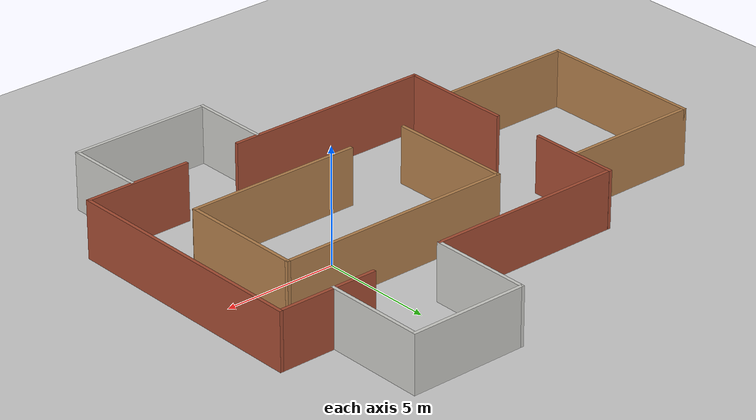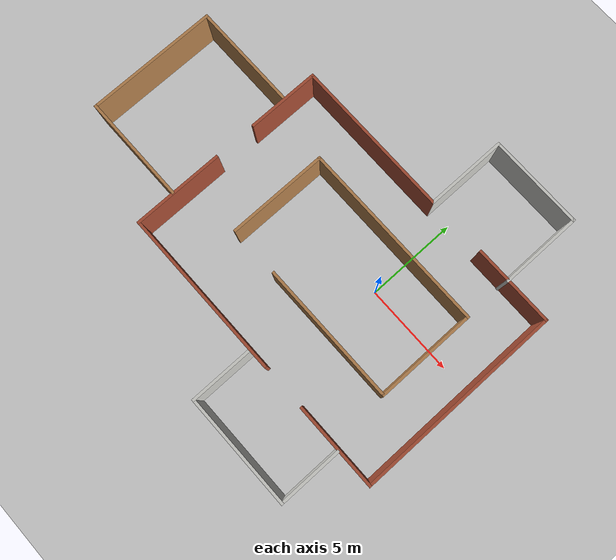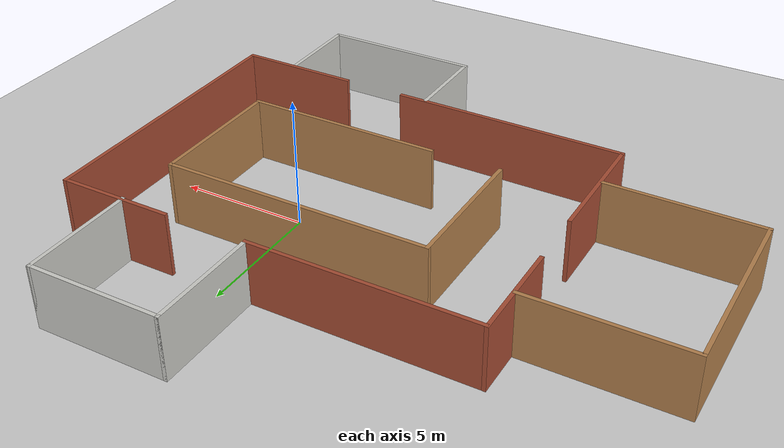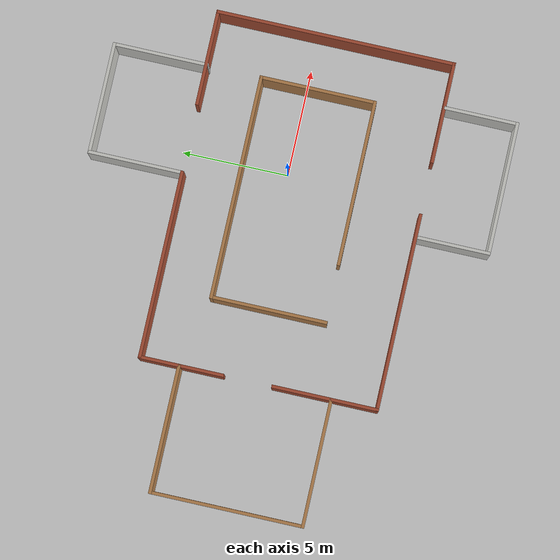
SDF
<sdf version="1.6">
 <world name="default">
  <light name="sun" type="directional">
   <pose>0 0 10 0 -0 0</pose>
   <diffuse>0.8 0.8 0.8 1</diffuse>
   <specular>0.2 0.2 0.2 1</specular>
   <attenuation>
    <range>1000</range>
    <constant>0.9</constant>
    <linear>0.01</linear>
    <quadratic>0.001</quadratic>
   </attenuation>
   <direction>-0.5 0.1 -0.9</direction>
  </light>
  <model name="ground_plane">
   <static>1</static>
   <link name="link">
    <collision name="collision">
     <geometry><plane><normal>0 0 1</normal><size>100 100</size></plane></geometry>
     <surface>
      <contact><collide_bitmask>65535</collide_bitmask></contact>
      <friction><ode><mu>100</mu><mu2>50</mu2></ode></friction>
     </surface>
    </collision>
    <visual name="visual">
     <cast_shadows>0</cast_shadows>
     <geometry><plane><normal>0 0 1</normal><size>100 100</size></plane></geometry>
     <material>
      <script><uri>file://media/materials/scripts/gazebo.material</uri><name>Gazebo/Grey</name></script>
     </material>
    </visual>
   </link>
  </model>
  <gravity>0 0 -9.8</gravity>
  <magnetic_field>6e-06 2.3e-05 -4.2e-05</magnetic_field>
  <atmosphere type="adiabatic"/>
  <physics name="default_physics" default="0" type="ode">
   <max_step_size>0.001</max_step_size>
   <real_time_factor>1</real_time_factor>
   <real_time_update_rate>1000</real_time_update_rate>
  </physics>
  <scene><ambient>0.4 0.4 0.4 1</ambient><background>0.7 0.7 0.7 1</background><shadows>1</shadows></scene>
  <spherical_coordinates>
   <surface_model>EARTH_WGS84</surface_model>
   <latitude_deg>0</latitude_deg>
   <longitude_deg>0</longitude_deg>
   <elevation>0</elevation>
   <heading_deg>0</heading_deg>
  </spherical_coordinates>
  <model name="colorfuloffice2">
   <pose>-4.63617 -0.377442 0 0 -0 0</pose>
   <link name="Wall_10">
    <collision name="Wall_10_Collision">
     <geometry><box><size>5.47716 0.15 2.5</size></box></geometry>
     <pose>0 0 1.25 0 -0 0</pose>
    </collision>
    <visual name="Wall_10_Visual">
     <pose>0 0 1.25 0 -0 0</pose>
     <geometry><box><size>5.47716 0.15 2.5</size></box></geometry>
     <material>
      <script><uri>file://media/materials/scripts/gazebo.material</uri><name>Gazebo/Wood</name></script>
      <ambient>0.12549 0.290196 0.529412 1</ambient>
     </material>
     <meta><layer>0</layer></meta>
    </visual>
    <pose>8.54292 -0.159211 0 0 -0 1.5708</pose>
   </link>
   <link name="Wall_11">
    <collision name="Wall_11_Collision">
     <geometry><box><size>10.5 0.15 2.5</size></box></geometry>
     <pose>0 0 1.25 0 -0 0</pose>
    </collision>
    <visual name="Wall_11_Visual">
     <pose>0 0 1.25 0 -0 0</pose>
     <geometry><box><size>10.5 0.15 2.5</size></box></geometry>
     <material>
      <script><uri>file://media/materials/scripts/gazebo.material</uri><name>Gazebo/Wood</name></script>
      <ambient>0.12549 0.290196 0.529412 1</ambient>
     </material>
     <meta><layer>0</layer></meta>
    </visual>
    <pose>3.36792 2.50437 0 0 -0 3.14159</pose>
   </link>
   <link name="Wall_12">
    <collision name="Wall_12_Collision">
     <geometry><box><size>5.5 0.15 2.5</size></box></geometry>
     <pose>0 0 1.25 0 -0 0</pose>
    </collision>
    <visual name="Wall_12_Visual">
     <pose>0 0 1.25 0 -0 0</pose>
     <geometry><box><size>5.5 0.15 2.5</size></box></geometry>
     <material>
      <script><uri>file://media/materials/scripts/gazebo.material</uri><name>Gazebo/Wood</name></script>
      <ambient>0.12549 0.290196 0.529412 1</ambient>
     </material>
     <meta><layer>0</layer></meta>
    </visual>
    <pose>-1.80708 -0.170633 0 0 -0 -1.5708</pose>
   </link>
   <link name="Wall_14">
    <collision name="Wall_14_Collision">
     <geometry><box><size>5 0.15 2.5</size></box></geometry>
     <pose>0 0 1.25 0 -0 0</pose>
    </collision>
    <visual name="Wall_14_Visual">
     <pose>0 0 1.25 0 -0 0</pose>
     <geometry><box><size>5 0.15 2.5</size></box></geometry>
     <material>
      <script><uri>file://media/materials/scripts/gazebo.material</uri><name>Gazebo/Bricks</name></script>
      <ambient>0.921569 0.807843 0.615686 1</ambient>
     </material>
     <meta><layer>0</layer></meta>
    </visual>
    <pose>-5.17579 -3.57902 0 0 -0 -1.5708</pose>
   </link>
   <link name="Wall_15">
    <collision name="Wall_15_Collision">
     <geometry><box><size>9.25 0.15 2.5</size></box></geometry>
     <pose>0 0 1.25 0 -0 0</pose>
    </collision>
    <visual name="Wall_15_Visual">
     <pose>0 0 1.25 0 -0 0</pose>
     <geometry><box><size>9.25 0.15 2.5</size></box></geometry>
     <material>
      <script><uri>file://media/materials/scripts/gazebo.material</uri><name>Gazebo/Bricks</name></script>
      <ambient>0.921569 0.807843 0.615686 1</ambient>
     </material>
     <meta><layer>0</layer></meta>
    </visual>
    <pose>-0.625791 -6.00402 0 0 -0 0</pose>
   </link>
   <link name="Wall_17">
    <collision name="Wall_17_Collision">
     <geometry><box><size>4.75 0.15 2.5</size></box></geometry>
     <pose>0 0 1.25 0 -0 0</pose>
    </collision>
    <visual name="Wall_17_Visual">
     <pose>0 0 1.25 0 -0 0</pose>
     <geometry><box><size>4.75 0.15 2.5</size></box></geometry>
     <material>
      <script><uri>file://media/materials/scripts/gazebo.material</uri><name>Gazebo/Bricks</name></script>
      <ambient>0.921569 0.807843 0.615686 1</ambient>
     </material>
     <meta><layer>0</layer></meta>
    </visual>
    <pose>8.77608 -5.99816 0 0 -0 0</pose>
   </link>
   <link name="Wall_21">
    <collision name="Wall_21_Collision">
     <geometry><box><size>11.25 0.15 2.5</size></box></geometry>
     <pose>0 0 1.25 0 -0 0</pose>
    </collision>
    <visual name="Wall_21_Visual">
     <pose>0 0 1.25 0 -0 0</pose>
     <geometry><box><size>11.25 0.15 2.5</size></box></geometry>
     <material>
      <script><uri>file://media/materials/scripts/gazebo.material</uri><name>Gazebo/Bricks</name></script>
      <ambient>0.921569 0.807843 0.615686 1</ambient>
     </material>
     <meta><layer>0</layer></meta>
    </visual>
    <pose>11.0761 -0.448156 0 0 -0 1.5708</pose>
   </link>
   <link name="Wall_22">
    <collision name="Wall_22_Collision">
     <geometry><box><size>4.5 0.15 2.5</size></box></geometry>
     <pose>0 0 1.25 0 -0 0</pose>
    </collision>
    <visual name="Wall_22_Visual">
     <pose>0 0 1.25 0 -0 0</pose>
     <geometry><box><size>4.5 0.15 2.5</size></box></geometry>
     <material>
      <script><uri>file://media/materials/scripts/gazebo.material</uri><name>Gazebo/Bricks</name></script>
      <ambient>0.921569 0.807843 0.615686 1</ambient>
     </material>
     <meta><layer>0</layer></meta>
    </visual>
    <pose>8.90108 5.10184 0 0 -0 3.14159</pose>
   </link>
   <link name="Wall_24">
    <collision name="Wall_24_Collision">
     <geometry><box><size>3.5 0.15 2.5</size></box></geometry>
     <pose>0 0 1.25 0 -0 0</pose>
    </collision>
    <visual name="Wall_24_Visual">
     <pose>0 0 1.25 0 -0 0</pose>
     <geometry><box><size>3.5 0.15 2.5</size></box></geometry>
     <material>
      <script><uri>file://media/materials/scripts/gazebo.material</uri><name>Gazebo/CeilingTiled</name></script>
      <ambient>0.435294 0.796078 0.67451 1</ambient>
     </material>
     <meta><layer>0</layer></meta>
    </visual>
    <pose>2.91126 -7.74481 0 0 -0 -1.5708</pose>
   </link>
   <link name="Wall_25">
    <collision name="Wall_25_Collision">
     <geometry><box><size>6.25 0.15 2.5</size></box></geometry>
     <pose>0 0 1.25 0 -0 0</pose>
    </collision>
    <visual name="Wall_25_Visual">
     <pose>0 0 1.25 0 -0 0</pose>
     <geometry><box><size>6.25 0.15 2.5</size></box></geometry>
     <material>
      <script><uri>file://media/materials/scripts/gazebo.material</uri><name>Gazebo/CeilingTiled</name></script>
      <ambient>0.435294 0.796078 0.67451 1</ambient>
     </material>
     <meta><layer>0</layer></meta>
    </visual>
    <pose>5.96126 -9.41981 0 0 -0 0</pose>
   </link>
   <link name="Wall_26">
    <collision name="Wall_26_Collision">
     <geometry><box><size>3.5 0.15 2.5</size></box></geometry>
     <pose>0 0 1.25 0 -0 0</pose>
    </collision>
    <visual name="Wall_26_Visual">
     <pose>0 0 1.25 0 -0 0</pose>
     <geometry><box><size>3.5 0.15 2.5</size></box></geometry>
     <material>
      <script><uri>file://media/materials/scripts/gazebo.material</uri><name>Gazebo/CeilingTiled</name></script>
      <ambient>0.435294 0.796078 0.67451 1</ambient>
     </material>
     <meta><layer>0</layer></meta>
    </visual>
    <pose>9.01126 -7.74481 0 0 -0 1.5708</pose>
   </link>
   <link name="Wall_28">
    <collision name="Wall_28_Collision">
     <geometry><box><size>8.75 0.15 2.5</size></box></geometry>
     <pose>0 0 1.25 0 -0 0</pose>
    </collision>
    <visual name="Wall_28_Visual">
     <pose>0 0 1.25 0 -0 0</pose>
     <geometry><box><size>8.75 0.15 2.5</size></box></geometry>
     <material>
      <script><uri>file://media/materials/scripts/gazebo.material</uri><name>Gazebo/Bricks</name></script>
      <ambient>0.921569 0.807843 0.615686 1</ambient>
     </material>
     <meta><layer>0</layer></meta>
    </visual>
    <pose>-0.835032 5.06981 0 0 -0 3.14159</pose>
   </link>
   <link name="Wall_30">
    <collision name="Wall_30_Collision">
     <geometry><box><size>4 0.15 2.5</size></box></geometry>
     <pose>0 0 1.25 0 -0 0</pose>
    </collision>
    <visual name="Wall_30_Visual">
     <pose>0 0 1.25 0 -0 0</pose>
     <geometry><box><size>4 0.15 2.5</size></box></geometry>
     <material>
      <script><uri>file://media/materials/scripts/gazebo.material</uri><name>Gazebo/Bricks</name></script>
      <ambient>0.921569 0.807843 0.615686 1</ambient>
     </material>
     <meta><layer>0</layer></meta>
    </visual>
    <pose>-5.18555 3.14964 0 0 -0 -1.5708</pose>
   </link>
   <link name="Wall_32">
    <collision name="Wall_32_Collision">
     <geometry><box><size>6 0.15 2.5</size></box></geometry>
     <pose>0 0 1.25 0 -0 0</pose>
    </collision>
    <visual name="Wall_32_Visual">
     <pose>0 0 1.25 0 -0 0</pose>
     <geometry><box><size>6 0.15 2.5</size></box></geometry>
     <material>
      <script><uri>file://media/materials/scripts/gazebo.material</uri><name>Gazebo/Wood</name></script>
      <ambient>1 1 1 1</ambient>
     </material>
     <meta><layer>0</layer></meta>
    </visual>
    <pose>-8.15108 3.23963 0 0 -0 3.14159</pose>
   </link>
   <link name="Wall_33">
    <collision name="Wall_33_Collision">
     <geometry><box><size>7.25 0.15 2.5</size></box></geometry>
     <pose>0 0 1.25 0 -0 0</pose>
    </collision>
    <visual name="Wall_33_Visual">
     <pose>0 0 1.25 0 -0 0</pose>
     <geometry><box><size>7.25 0.15 2.5</size></box></geometry>
     <material>
      <script><uri>file://media/materials/scripts/gazebo.material</uri><name>Gazebo/Wood</name></script>
      <ambient>1 1 1 1</ambient>
     </material>
     <meta><layer>0</layer></meta>
    </visual>
    <pose>-11.0761 -0.310369 0 0 -0 -1.5708</pose>
   </link>
   <link name="Wall_34">
    <collision name="Wall_34_Collision">
     <geometry><box><size>6 0.15 2.5</size></box></geometry>
     <pose>0 0 1.25 0 -0 0</pose>
    </collision>
    <visual name="Wall_34_Visual">
     <pose>0 0 1.25 0 -0 0</pose>
     <geometry><box><size>6 0.15 2.5</size></box></geometry>
     <material>
      <script><uri>file://media/materials/scripts/gazebo.material</uri><name>Gazebo/Wood</name></script>
      <ambient>1 1 1 1</ambient>
     </material>
     <meta><layer>0</layer></meta>
    </visual>
    <pose>-8.15108 -3.86037 0 0 -0 0</pose>
   </link>
   <link name="Wall_36">
    <collision name="Wall_36_Collision">
     <geometry><box><size>4.5 0.15 2.5</size></box></geometry>
     <pose>0 0 1.25 0 -0 0</pose>
    </collision>
    <visual name="Wall_36_Visual">
     <pose>0 0 1.25 0 -0 0</pose>
     <geometry><box><size>4.5 0.15 2.5</size></box></geometry>
     <material>
      <script><uri>file://media/materials/scripts/gazebo.material</uri><name>Gazebo/CeilingTiled</name></script>
      <ambient>1 1 1 1</ambient>
     </material>
     <meta><layer>0</layer></meta>
    </visual>
    <pose>3.46497 7.24481 0 0 -0 1.5708</pose>
   </link>
   <link name="Wall_37">
    <collision name="Wall_37_Collision">
     <geometry><box><size>5.25 0.15 2.5</size></box></geometry>
     <pose>0 0 1.25 0 -0 0</pose>
    </collision>
    <visual name="Wall_37_Visual">
     <pose>0 0 1.25 0 -0 0</pose>
     <geometry><box><size>5.25 0.15 2.5</size></box></geometry>
     <material>
      <script><uri>file://media/materials/scripts/gazebo.material</uri><name>Gazebo/CeilingTiled</name></script>
      <ambient>1 1 1 1</ambient>
     </material>
     <meta><layer>0</layer></meta>
    </visual>
    <pose>6.01497 9.41981 0 0 -0 0</pose>
   </link>
   <link name="Wall_38">
    <collision name="Wall_38_Collision">
     <geometry><box><size>4.5 0.15 2.5</size></box></geometry>
     <pose>0 0 1.25 0 -0 0</pose>
    </collision>
    <visual name="Wall_38_Visual">
     <pose>0 0 1.25 0 -0 0</pose>
     <geometry><box><size>4.5 0.15 2.5</size></box></geometry>
     <material>
      <script><uri>file://media/materials/scripts/gazebo.material</uri><name>Gazebo/CeilingTiled</name></script>
      <ambient>1 1 1 1</ambient>
     </material>
     <meta><layer>0</layer></meta>
    </visual>
    <pose>8.56497 7.24481 0 0 -0 -1.5708</pose>
   </link>
   <link name="Wall_9">
    <collision name="Wall_9_Collision">
     <geometry><box><size>7.75 0.15 2.5</size></box></geometry>
     <pose>0 0 1.25 0 -0 0</pose>
    </collision>
    <visual name="Wall_9_Visual">
     <pose>0 0 1.25 0 -0 0</pose>
     <geometry><box><size>7.75 0.15 2.5</size></box></geometry>
     <material>
      <script><uri>file://media/materials/scripts/gazebo.material</uri><name>Gazebo/Wood</name></script>
      <ambient>0.12549 0.290196 0.529412 1</ambient>
     </material>
     <meta><layer>0</layer></meta>
    </visual>
    <pose>4.74292 -2.838 0 0 -0 0</pose>
   </link>
   <static>1</static>
  </model>
 </world>
</sdf>
